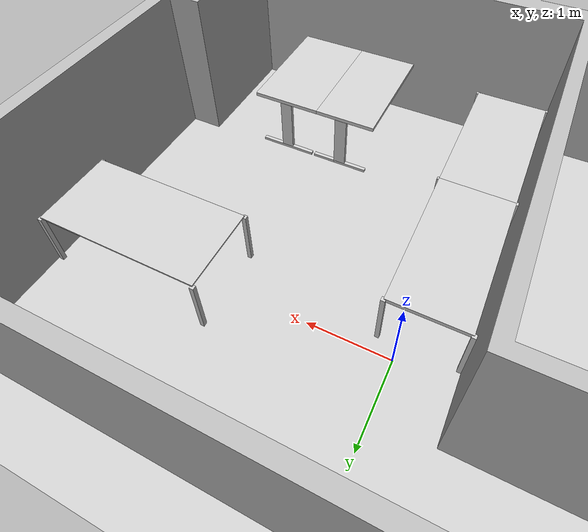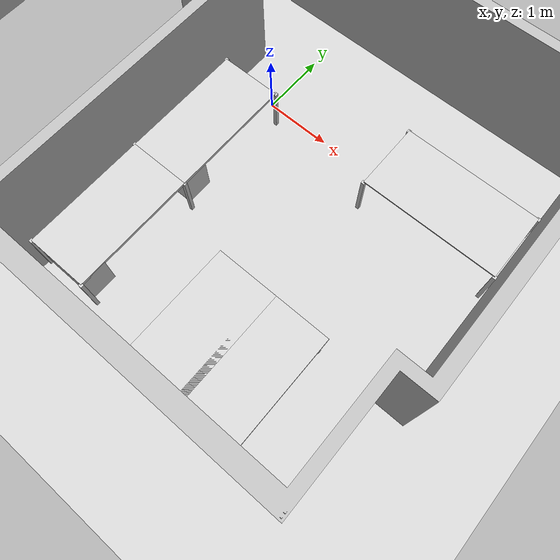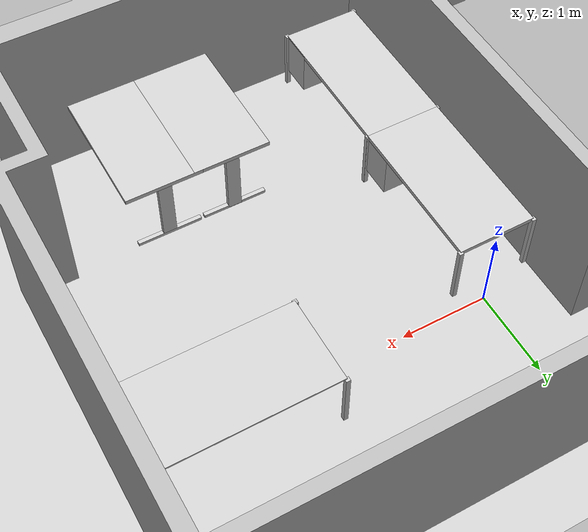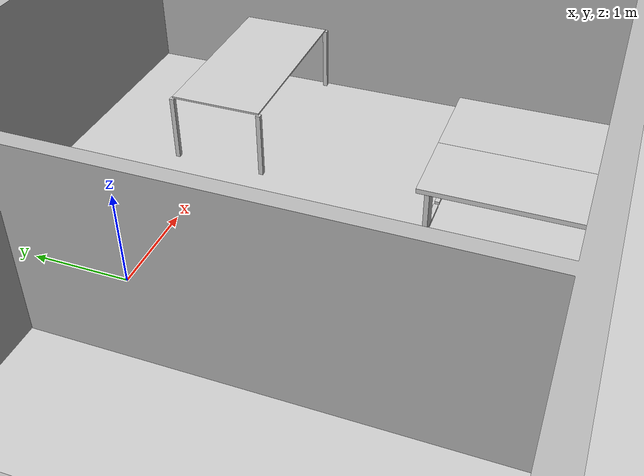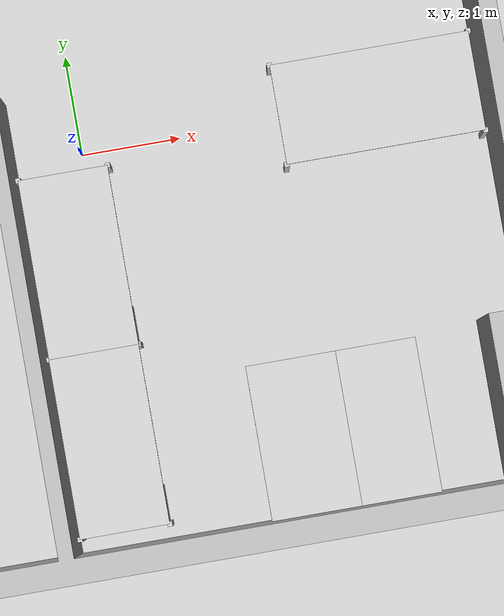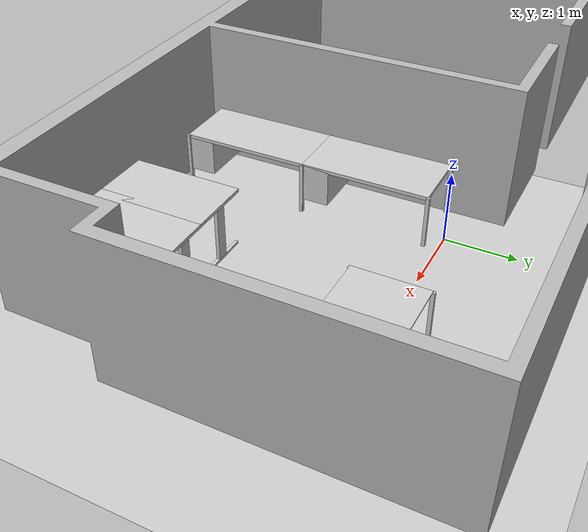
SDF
<?xml version="1.0"?>
<sdf version="1.6">
  <world name="rosebv">
    <light name="sun" type="directional">
      <direction>0.5 0.1 -0.9</direction>
      <pose>0 0 10 0 0 0</pose>
      <specular>0.2 0.2 0.2 1</specular>
      <cast_shadows>true</cast_shadows>
      <diffuse>0.8 0.8 0.8 1</diffuse>
      <attenuation>
        <range>1000</range>
        <quadratic>0.001</quadratic>
        <constant>0.9</constant>
        <linear>0.01</linear>
      </attenuation>
    </light>
    <include>
      <pose>0 0 0 0 0 0</pose>
      <name>walls</name>
      <uri>model://rosebv/walls</uri>
    </include>
    <include>
      <pose>0 0 0 0 0 0</pose>
      <name>floor</name>
      <uri>model://ground_plane</uri>
    </include>
    <include>
      <pose>3 0 0 0 0 0</pose>
      <name>office_table1</name>
      <uri>model://table_200x100x76</uri>
    </include>
    <include>
      <pose>-0.2 -1.1 0 0 0 -1.57</pose>
      <name>desk1</name>
      <uri>model://table_ahrend_180x90x75_with_drawers</uri>
    </include>
    <include>
      <pose>-0.2 -2.9 0 0 0 -1.57</pose>
      <name>desk2</name>
      <uri>model://table_ahrend_180x90x75_with_drawers</uri>
    </include>
    <include>
      <pose>1.7 -3.3 0 0 0 1.57</pose>
      <name>desk3</name>
      <uri>model://table_2legs_180x80x76</uri>
    </include>
    <include>
      <pose>2.5 -3.3 0 0 0 1.57</pose>
      <name>desk4</name>
      <uri>model://table_2legs_180x80x76</uri>
    </include>
    <physics type="ode">
      <real_time_update_rate>333.0</real_time_update_rate>
      <max_step_size>0.003</max_step_size>
      <ode>
        <constraints>
          <cfm>0.0001</cfm>
        </constraints>
        <solver>
          <type>quick</type>
          <iters>100</iters>
        </solver>
      </ode>
    </physics>
  </world>
</sdf>

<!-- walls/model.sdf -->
<sdf version="1.6">
  <model name="rosebv/walls">
    <link name="1_link">
      <collision name="1_col">
        <geometry>
          <mesh>
            <uri>model://rosebv/walls/shape/rosebv.stl</uri>
          </mesh>
        </geometry>
      </collision>
      <visual name="1_vis">
        <geometry>
          <mesh>
            <uri>model://rosebv/walls/shape/rosebv.stl</uri>
          </mesh>
        </geometry>
      </visual>
      <pose>0 0 0 0 0 0</pose>
    </link>
    <static>true</static>
  </model>
</sdf>

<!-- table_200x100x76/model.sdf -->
<sdf version="1.6">
  <model name="table_200x100x76">
    <link name="1_link">
      <collision name="1_col">
        <geometry>
          <box>
            <size>2.0 1.0 0.02</size>
          </box>
        </geometry>
      </collision>
      <visual name="1_vis">
        <geometry>
          <box>
            <size>2.0 1.0 0.02</size>
          </box>
        </geometry>
        <material>
          <ambient>0.8 0.8 0.8 1</ambient>
        </material>
      </visual>
      <pose>0.0 0.0 0.75 0 0 0</pose>
    </link>
    <link name="2_link">
      <collision name="2_col">
        <geometry>
          <box>
            <size>0.05 0.05 0.74</size>
          </box>
        </geometry>
      </collision>
      <visual name="2_vis">
        <geometry>
          <box>
            <size>0.05 0.05 0.74</size>
          </box>
        </geometry>
        <material>
          <ambient>0.8 0.8 0.8 1</ambient>
        </material>
      </visual>
      <pose>-1.0 -0.5 0.37 0 0 0</pose>
    </link>
    <link name="3_link">
      <collision name="3_col">
        <geometry>
          <box>
            <size>0.05 0.05 0.74</size>
          </box>
        </geometry>
      </collision>
      <visual name="3_vis">
        <geometry>
          <box>
            <size>0.05 0.05 0.74</size>
          </box>
        </geometry>
        <material>
          <ambient>0.8 0.8 0.8 1</ambient>
        </material>
      </visual>
      <pose>1.0 -0.5 0.37 0 0 0</pose>
    </link>
    <link name="4_link">
      <collision name="4_col">
        <geometry>
          <box>
            <size>0.05 0.05 0.74</size>
          </box>
        </geometry>
      </collision>
      <visual name="4_vis">
        <geometry>
          <box>
            <size>0.05 0.05 0.74</size>
          </box>
        </geometry>
        <material>
          <ambient>0.8 0.8 0.8 1</ambient>
        </material>
      </visual>
      <pose>-1.0 0.5 0.37 0 0 0</pose>
    </link>
    <link name="5_link">
      <collision name="5_col">
        <geometry>
          <box>
            <size>0.05 0.05 0.74</size>
          </box>
        </geometry>
      </collision>
      <visual name="5_vis">
        <geometry>
          <box>
            <size>0.05 0.05 0.74</size>
          </box>
        </geometry>
        <material>
          <ambient>0.8 0.8 0.8 1</ambient>
        </material>
      </visual>
      <pose>1.0 0.5 0.37 0 0 0</pose>
    </link>
    <static>true</static>
  </model>
</sdf>

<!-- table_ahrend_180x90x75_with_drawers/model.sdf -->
<sdf version="1.6">
  <model name="table_ahrend_180x90x75_with_drawers">
    <link name="1_link">
      <collision name="1_col">
        <geometry>
          <box>
            <size>1.8 0.9 0.05</size>
          </box>
        </geometry>
      </collision>
      <visual name="1_vis">
        <geometry>
          <box>
            <size>1.8 0.9 0.05</size>
          </box>
        </geometry>
        <material>
          <ambient>0.8 0.8 0.8 1</ambient>
        </material>
      </visual>
      <pose>0.0 0.0 0.725 0 0 0</pose>
    </link>
    <link name="2_link">
      <collision name="2_col">
        <geometry>
          <box>
            <size>0.05 0.05 0.74</size>
          </box>
        </geometry>
      </collision>
      <visual name="2_vis">
        <geometry>
          <box>
            <size>0.05 0.05 0.74</size>
          </box>
        </geometry>
        <material>
          <ambient>0.8 0.8 0.8 1</ambient>
        </material>
      </visual>
      <pose>-0.9 -0.45 0.37 0 0 0</pose>
    </link>
    <link name="3_link">
      <collision name="3_col">
        <geometry>
          <box>
            <size>0.05 0.05 0.74</size>
          </box>
        </geometry>
      </collision>
      <visual name="3_vis">
        <geometry>
          <box>
            <size>0.05 0.05 0.74</size>
          </box>
        </geometry>
        <material>
          <ambient>0.8 0.8 0.8 1</ambient>
        </material>
      </visual>
      <pose>-0.9 0.45 0.37 0 0 0</pose>
    </link>
    <link name="4_link">
      <collision name="4_col">
        <geometry>
          <box>
            <size>0.05 0.05 0.74</size>
          </box>
        </geometry>
      </collision>
      <visual name="4_vis">
        <geometry>
          <box>
            <size>0.05 0.05 0.74</size>
          </box>
        </geometry>
        <material>
          <ambient>0.8 0.8 0.8 1</ambient>
        </material>
      </visual>
      <pose>0.9 -0.45 0.37 0 0 0</pose>
    </link>
    <link name="5_link">
      <collision name="5_col">
        <geometry>
          <box>
            <size>0.05 0.05 0.74</size>
          </box>
        </geometry>
      </collision>
      <visual name="5_vis">
        <geometry>
          <box>
            <size>0.05 0.05 0.74</size>
          </box>
        </geometry>
        <material>
          <ambient>0.8 0.8 0.8 1</ambient>
        </material>
      </visual>
      <pose>0.9 0.45 0.37 0 0 0</pose>
    </link>
    <link name="6_link">
      <collision name="6_col">
        <geometry>
          <box>
            <size>0.39 0.72 0.53</size>
          </box>
        </geometry>
      </collision>
      <visual name="6_vis">
        <geometry>
          <box>
            <size>0.39 0.72 0.53</size>
          </box>
        </geometry>
        <material>
          <ambient>0.8 0.8 0.8 1</ambient>
        </material>
      </visual>
      <pose>0.705 0.09 0.465 0 0 0</pose>
    </link>
    <static>true</static>
  </model>
</sdf>

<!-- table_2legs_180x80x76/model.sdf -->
<sdf version="1.6">
  <model name="table_2legs_180x80x76">
    <link name="1_link">
      <collision name="1_col">
        <geometry>
          <box>
            <size>1.8 0.9 0.05</size>
          </box>
        </geometry>
      </collision>
      <visual name="1_vis">
        <geometry>
          <box>
            <size>1.8 0.9 0.05</size>
          </box>
        </geometry>
        <material>
          <ambient>0.8 0.8 0.8 1</ambient>
        </material>
      </visual>
      <pose>0 0 0.785 0 0 0</pose>
    </link>
    <link name="2_link">
      <collision name="2_col">
        <geometry>
          <box>
            <size>0.05 0.16 0.76</size>
          </box>
        </geometry>
      </collision>
      <visual name="2_vis">
        <geometry>
          <box>
            <size>0.05 0.16 0.76</size>
          </box>
        </geometry>
        <material>
          <ambient>0.8 0.8 0.8 1</ambient>
        </material>
      </visual>
      <pose>-0.875 0 0.38 0 0 0</pose>
    </link>
    <link name="3_link">
      <collision name="3_col">
        <geometry>
          <box>
            <size>0.05 0.16 0.76</size>
          </box>
        </geometry>
      </collision>
      <visual name="3_vis">
        <geometry>
          <box>
            <size>0.05 0.16 0.76</size>
          </box>
        </geometry>
        <material>
          <ambient>0.8 0.8 0.8 1</ambient>
        </material>
      </visual>
      <pose>0.875 0 0.38 0 0 0</pose>
    </link>
    <link name="4_link">
      <collision name="4_col">
        <geometry>
          <box>
            <size>0.05 0.76 0.06</size>
          </box>
        </geometry>
      </collision>
      <visual name="4_vis">
        <geometry>
          <box>
            <size>0.05 0.76 0.06</size>
          </box>
        </geometry>
        <material>
          <ambient>0.8 0.8 0.8 1</ambient>
        </material>
      </visual>
      <pose>-0.875 0 0 0 0 0</pose>
    </link>
    <link name="5_link">
      <collision name="5_col">
        <geometry>
          <box>
            <size>0.05 0.76 0.06</size>
          </box>
        </geometry>
      </collision>
      <visual name="5_vis">
        <geometry>
          <box>
            <size>0.05 0.76 0.06</size>
          </box>
        </geometry>
        <material>
          <ambient>0.8 0.8 0.8 1</ambient>
        </material>
      </visual>
      <pose>0.875 0 0.0 0 0 0</pose>
    </link>
    <static>true</static>
  </model>
</sdf>
